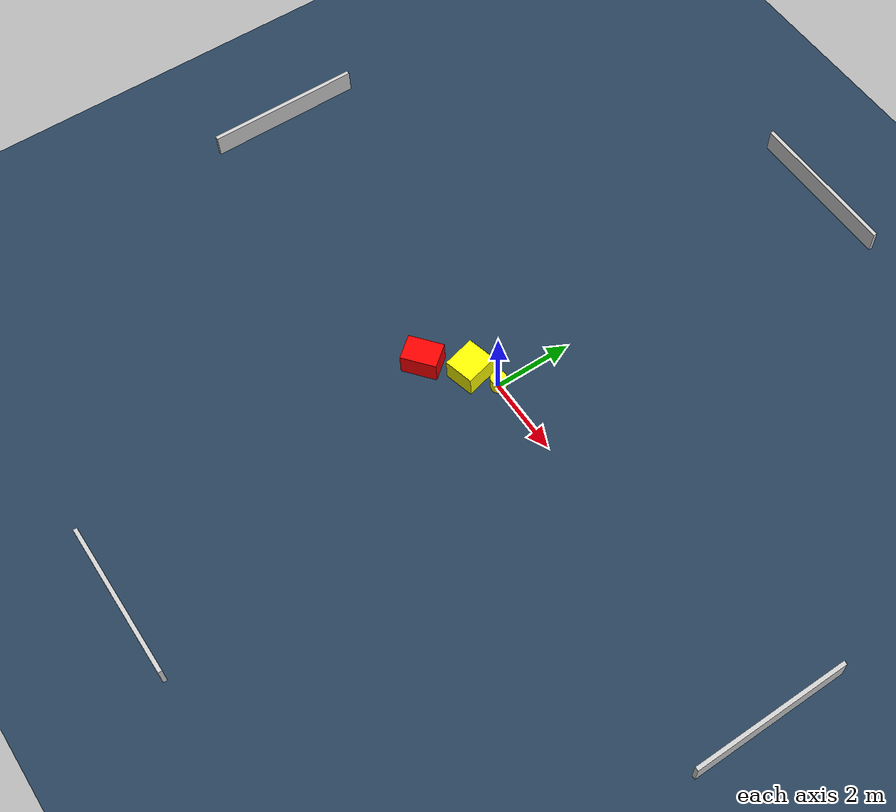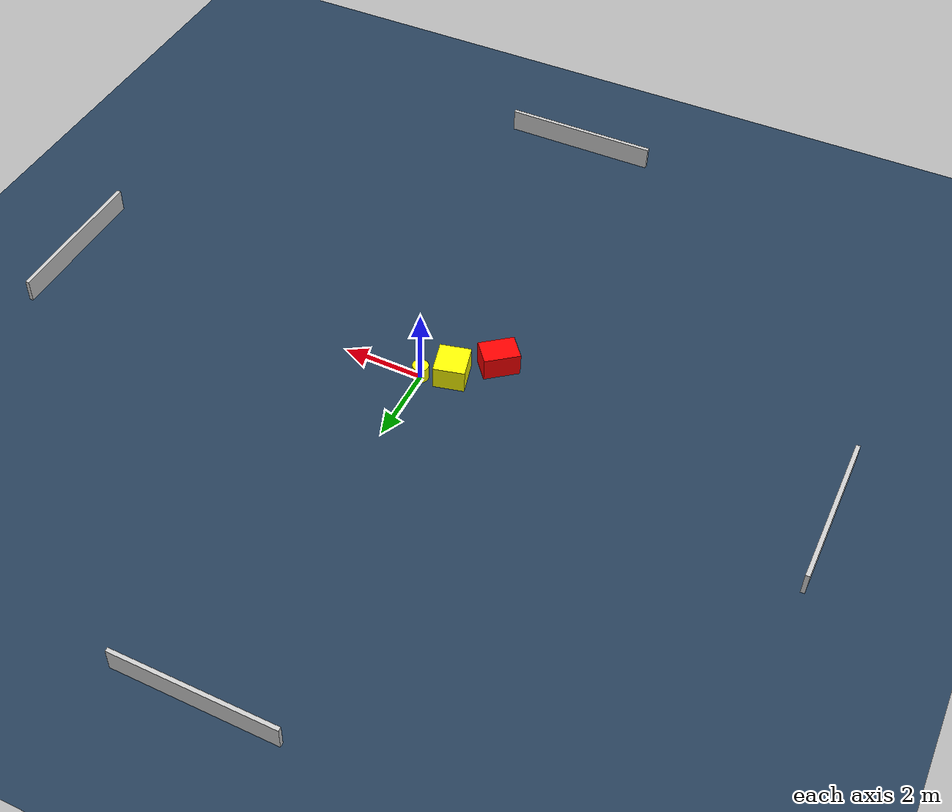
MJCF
<?xml version="1.0" ?>
<mujoco model="generated_environment">
  <option timestep="0.01" integrator="RK4" cone="elliptic"/>
  <default>
    <geom density="1"/>
  </default>
  <asset>
    <texture builtin="gradient" height="3072" name="skybox" rgb1="0.3 0.5 0.7" rgb2="0 0 0" type="skybox" width="512"/>
    <texture builtin="checker" height="300" name="groundplane" rgb1="0.2 0.3 0.4" rgb2="0.1 0.2 0.3" type="2d" width="300"/>
    <material name="groundplane" reflectance="0.2" texrepeat="5 5" texture="groundplane"/>
  </asset>
  <worldbody>
    <light dir="0 0 -1" directional="true" pos="0 0 1.5"/>
    <geom condim="3" friction="0.5 0.005 0.001" material="groundplane" name="floor" pos="0 0 0" size="0 0 0.05" type="plane"/>
    <body name="walls">
      <geom name="wall_1" condim="4" pos="-10.0 0.0 0.3" rgba="0.800000011920929 0.800000011920929 0.800000011920929 1.0" size="0.05 2.0 0.3" type="box"/>
      <geom name="wall_2" condim="4" pos="10.0 0.0 0.3" rgba="0.800000011920929 0.800000011920929 0.800000011920929 1.0" size="0.05 2.0 0.3" type="box"/>
      <geom name="wall_3" condim="4" pos="0.0 -10.0 0.3" rgba="0.800000011920929 0.800000011920929 0.800000011920929 1.0" size="2.0 0.05 0.3" type="box"/>
      <geom name="wall_4" condim="4" pos="0.0 10.0 0.3" rgba="0.800000011920929 0.800000011920929 0.800000011920929 1.0" size="2.0 0.05 0.3" type="box"/>
    </body>
    <body name="robot">
      <joint name="joint_x" type="slide" pos="0 0 0" axis="1 0 0"/>
      <joint name="joint_y" type="slide" pos="0 0 0" axis="0 1 0"/>
      <geom name="robot" type="cylinder" pos="0.0 0.0 0.2" size="0.2 0.2 0.0" mass="5.0" friction="1.0 0.005 0.0001" condim="4" rgba="1.0 1.0 0.0 1.0"/>
    </body>
    <body name="obstacle_1_movable">
      <geom name="obstacle_1_movable" condim="4" pos="-0.664814225768984 -0.35233451059488746 0.3" euler="0 0 283.8010023622426" friction="0.0 0.005 0.001" rgba="1.0 1.0 0.0 1.0" size="0.42249590763290545 0.38787593660112396 0.3" type="box" mass="0.1"/>
      <joint type="free"/>
    </body>
    <body name="obstacle_2_static">
      <geom name="obstacle_2_static" condim="4" pos="-1.5305490260212988 -1.146025964499332 0.3" euler="0 0 38.81872892241282" friction="0.0 0.005 0.001" rgba="1.0 0.0 0.0 1.0" size="0.45182814475826777 0.32694336484728737 0.3" type="box"/>
    </body>
  </worldbody>
  <actuator>
    <motor name="actuator_x" joint="joint_x" gear="1" ctrlrange="-1 1"/>
    <motor name="actuator_y" joint="joint_y" gear="1" ctrlrange="-1 1"/>
  </actuator>
</mujoco>
